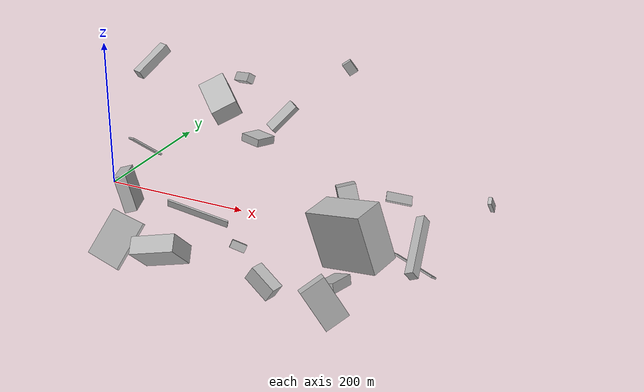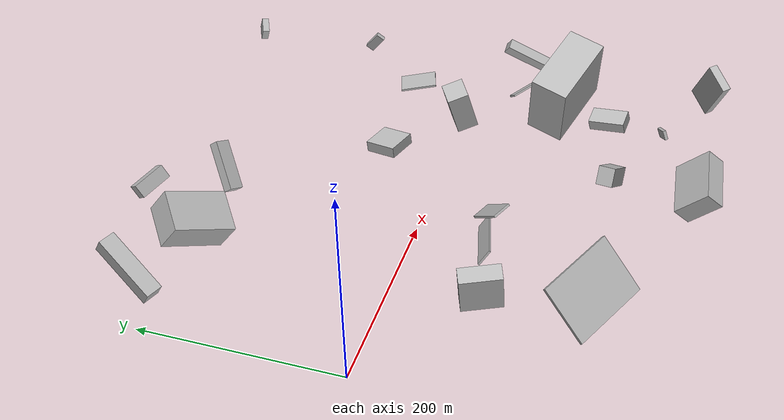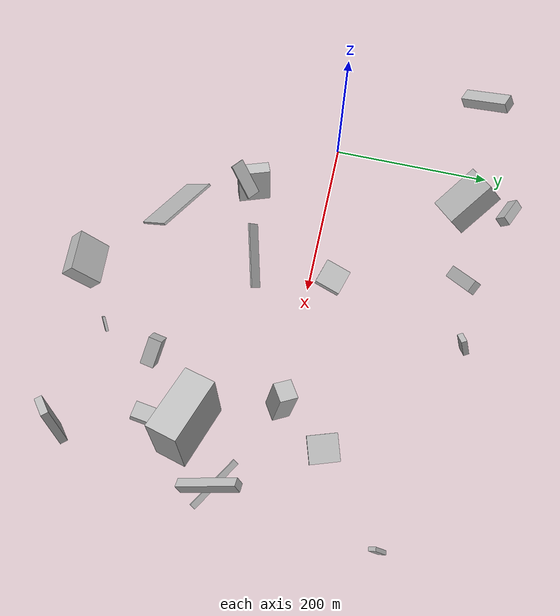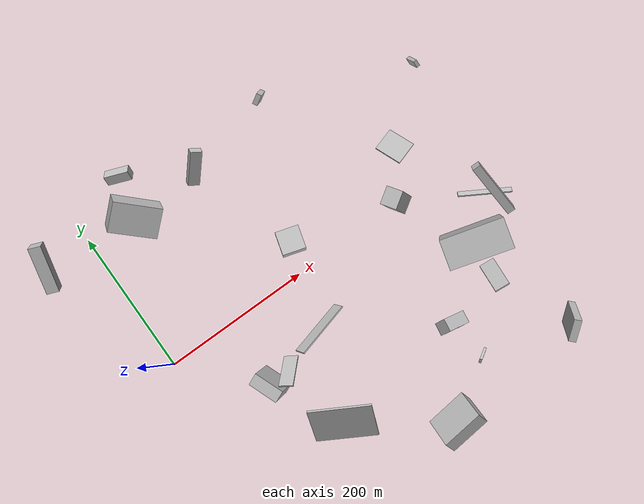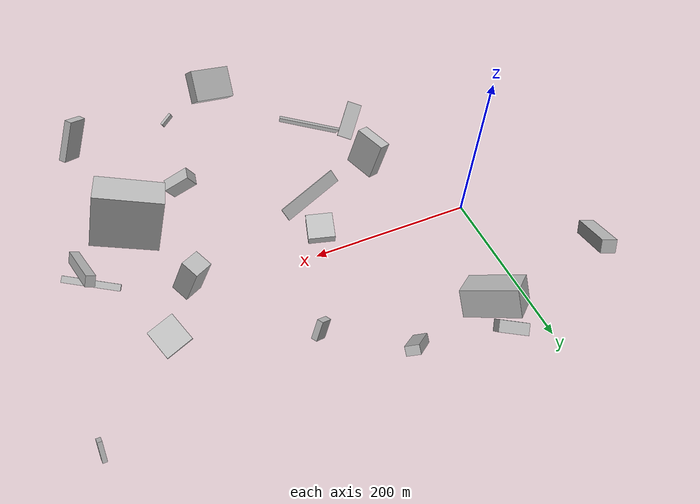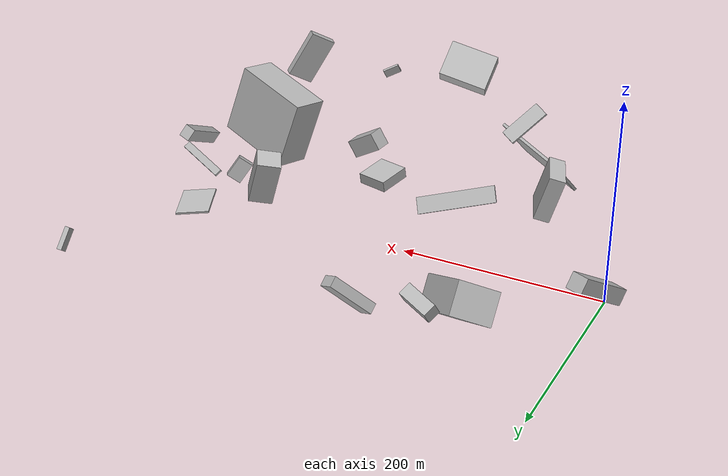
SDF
<sdf version="1.6">
 <world name="default">
  <scene>
   <sky><clouds><speed>12</speed></clouds></sky>
   <ambient>0.4 0.4 0.4 1</ambient>
   <background>0.7 0.7 0.7 1</background>
   <shadows>1</shadows>
  </scene>
  <gravity>0 0 -9.8066</gravity>
  <magnetic_field>6e-06 2.3e-05 -4.2e-05</magnetic_field>
  <physics default="0" name="default_physics" type="ode">
   <ode>
    <solver>
     <type>quick</type>
     <iters>10</iters>
     <sor>1.0</sor>
     <use_dynamic_moi_rescaling>0</use_dynamic_moi_rescaling>
    </solver>
    <constraints>
     <cfm>0</cfm>
     <erp>0.2</erp>
     <contact_max_correcting_vel>100</contact_max_correcting_vel>
     <contact_surface_layer>0.001</contact_surface_layer>
    </constraints>
   </ode>
   <max_step_size>0.004</max_step_size>
   <real_time_factor>1</real_time_factor>
   <real_time_update_rate>250</real_time_update_rate>
  </physics>
  <light name="sun" type="directional">
   <pose>0 0 10 0 0 0</pose>
   <diffuse>0.8 0.8 0.8 1</diffuse>
   <specular>0.2 0.2 0.2 1</specular>
   <attenuation>
    <range>1000</range>
    <constant>0.9</constant>
    <linear>0.01</linear>
    <quadratic>0.001</quadratic>
   </attenuation>
   <direction>-0.5 0.1 -0.9</direction>
  </light>
  <model name="building_1">
   <static>0</static>
   <pose>316.0937582929288 -211.87017826311964 84.32874828350208 -2.891015814713076 -0.4388677706784098 -2.696919925962329</pose>
   <link name="link">
    <gravity>0</gravity>
    <pose>0 0 4.5 0 0 0</pose>
    <collision name="collision"><geometry><box><size>17 3 9</size></box></geometry></collision>
    <visual name="visual">
     <cast_shadows>0</cast_shadows>
     <geometry><box><size>17 3 9</size></box></geometry>
     <material>
      <script>
       <uri>model://HANNAS_wall/materials/scripts</uri>
       <uri>model://HANNAS_wall/materials/textures</uri>
       <name>vrc/HANNAS_wall</name>
      </script>
     </material>
    </visual>
   </link>
  </model>
  <model name="building_2">
   <static>0</static>
   <pose>94.9317124932773 151.06019216824927 64.48339640127956 1.0965842462357036 0.42895206167528394 -2.486033483600368</pose>
   <link name="link">
    <gravity>0</gravity>
    <pose>0 0 30.0 0 0 0</pose>
    <collision name="collision"><geometry><box><size>39 30 60</size></box></geometry></collision>
    <visual name="visual">
     <cast_shadows>0</cast_shadows>
     <geometry><box><size>39 30 60</size></box></geometry>
     <material>
      <script>
       <uri>model://HANNAS_wall/materials/scripts</uri>
       <uri>model://HANNAS_wall/materials/textures</uri>
       <name>vrc/HANNAS_wall</name>
      </script>
     </material>
    </visual>
   </link>
  </model>
  <model name="building_3">
   <static>0</static>
   <pose>401.0914923944698 -151.41196103262078 16.995153993526863 0.22499635977322407 -0.1595141790994477 -1.6997902003308478</pose>
   <link name="link">
    <gravity>0</gravity>
    <pose>0 0 6.0 0 0 0</pose>
    <collision name="collision"><geometry><box><size>38 20 12</size></box></geometry></collision>
    <visual name="visual">
     <cast_shadows>0</cast_shadows>
     <geometry><box><size>38 20 12</size></box></geometry>
     <material>
      <script>
       <uri>model://HANNAS_wall/materials/scripts</uri>
       <uri>model://HANNAS_wall/materials/textures</uri>
       <name>vrc/HANNAS_wall</name>
      </script>
     </material>
    </visual>
   </link>
  </model>
  <model name="building_4">
   <static>0</static>
   <pose>83.39456850514594 -95.9085748549927 46.69246340647108 0.2779958833531581 -1.2869883547283891 -3.0435650922036364</pose>
   <link name="link">
    <gravity>0</gravity>
    <pose>0 0 8.0 0 0 0</pose>
    <collision name="collision"><geometry><box><size>48 39 16</size></box></geometry></collision>
    <visual name="visual">
     <cast_shadows>0</cast_shadows>
     <geometry><box><size>48 39 16</size></box></geometry>
     <material>
      <script>
       <uri>model://HANNAS_wall/materials/scripts</uri>
       <uri>model://HANNAS_wall/materials/textures</uri>
       <name>vrc/HANNAS_wall</name>
      </script>
     </material>
    </visual>
   </link>
  </model>
  <model name="building_5">
   <static>0</static>
   <pose>247.0884977567711 -264.51056245001587 73.4424131585451 0.33116146612534536 -0.776766013648153 -1.6724519477182223</pose>
   <link name="link">
    <gravity>0</gravity>
    <pose>0 0 10.0 0 0 0</pose>
    <collision name="collision"><geometry><box><size>39 52 20</size></box></geometry></collision>
    <visual name="visual">
     <cast_shadows>0</cast_shadows>
     <geometry><box><size>39 52 20</size></box></geometry>
     <material>
      <script>
       <uri>model://HANNAS_wall/materials/scripts</uri>
       <uri>model://HANNAS_wall/materials/textures</uri>
       <name>vrc/HANNAS_wall</name>
      </script>
     </material>
    </visual>
   </link>
  </model>
  <model name="building_6">
   <static>0</static>
   <pose>214.26805899773777 43.53858848783681 91.50399630129155 0.24052769120409198 -1.428577674451144 1.0403974486366159</pose>
   <link name="link">
    <gravity>0</gravity>
    <pose>0 0 15.0 0 0 0</pose>
    <collision name="collision"><geometry><box><size>10 29 30</size></box></geometry></collision>
    <visual name="visual">
     <cast_shadows>0</cast_shadows>
     <geometry><box><size>10 29 30</size></box></geometry>
     <material>
      <script>
       <uri>model://HANNAS_wall/materials/scripts</uri>
       <uri>model://HANNAS_wall/materials/textures</uri>
       <name>vrc/HANNAS_wall</name>
      </script>
     </material>
    </visual>
   </link>
  </model>
  <model name="building_7">
   <static>0</static>
   <pose>178.32971195428047 -72.62751135495793 25.7420843736564 2.197584428529295 0.28637755193387526 0.2513544994696038</pose>
   <link name="link">
    <gravity>0</gravity>
    <pose>0 0 1.0 0 0 0</pose>
    <collision name="collision"><geometry><box><size>80 17 2</size></box></geometry></collision>
    <visual name="visual">
     <cast_shadows>0</cast_shadows>
     <geometry><box><size>80 17 2</size></box></geometry>
     <material>
      <script>
       <uri>model://HANNAS_wall/materials/scripts</uri>
       <uri>model://HANNAS_wall/materials/textures</uri>
       <name>vrc/HANNAS_wall</name>
      </script>
     </material>
    </visual>
   </link>
  </model>
  <model name="building_8">
   <static>0</static>
   <pose>491.5370619185902 135.21545059807468 18.407416991819794 2.9733598260456593 -0.6569719333467913 1.740073967000932</pose>
   <link name="link">
    <gravity>0</gravity>
    <pose>0 0 11.5 0 0 0</pose>
    <collision name="collision"><geometry><box><size>10 5 23</size></box></geometry></collision>
    <visual name="visual">
     <cast_shadows>0</cast_shadows>
     <geometry><box><size>10 5 23</size></box></geometry>
     <material>
      <script>
       <uri>model://HANNAS_wall/materials/scripts</uri>
       <uri>model://HANNAS_wall/materials/textures</uri>
       <name>vrc/HANNAS_wall</name>
      </script>
     </material>
    </visual>
   </link>
  </model>
  <model name="building_9">
   <static>0</static>
   <pose>428.71142988604066 -244.72766455588948 59.91939589803739 1.4683194772805819 -0.5119842993105983 0.7995513551384197</pose>
   <link name="link">
    <gravity>0</gravity>
    <pose>0 0 4.5 0 0 0</pose>
    <collision name="collision"><geometry><box><size>29 54 9</size></box></geometry></collision>
    <visual name="visual">
     <cast_shadows>0</cast_shadows>
     <geometry><box><size>29 54 9</size></box></geometry>
     <material>
      <script>
       <uri>model://HANNAS_wall/materials/scripts</uri>
       <uri>model://HANNAS_wall/materials/textures</uri>
       <name>vrc/HANNAS_wall</name>
      </script>
     </material>
    </visual>
   </link>
  </model>
  <model name="building_10">
   <static>0</static>
   <pose>360.0039830477735 -89.83524573115157 49.27208363249852 1.3210981017594865 -0.15747027238474848 1.3112711545553248</pose>
   <link name="link">
    <gravity>0</gravity>
    <pose>0 0 40.0 0 0 0</pose>
    <collision name="collision"><geometry><box><size>39 72 80</size></box></geometry></collision>
    <visual name="visual">
     <cast_shadows>0</cast_shadows>
     <geometry><box><size>39 72 80</size></box></geometry>
     <material>
      <script>
       <uri>model://HANNAS_wall/materials/scripts</uri>
       <uri>model://HANNAS_wall/materials/textures</uri>
       <name>vrc/HANNAS_wall</name>
      </script>
     </material>
    </visual>
   </link>
  </model>
  <model name="building_11">
   <static>0</static>
   <pose>459.87549663958976 -56.065095750874384 13.234946886143092 3.1001711591916887 0.5708219789366666 1.0023608304136409</pose>
   <link name="link">
    <gravity>0</gravity>
    <pose>0 0 1.0 0 0 0</pose>
    <collision name="collision"><geometry><box><size>8 71 2</size></box></geometry></collision>
    <visual name="visual">
     <cast_shadows>0</cast_shadows>
     <geometry><box><size>8 71 2</size></box></geometry>
     <material>
      <script>
       <uri>model://HANNAS_wall/materials/scripts</uri>
       <uri>model://HANNAS_wall/materials/textures</uri>
       <name>vrc/HANNAS_wall</name>
      </script>
     </material>
    </visual>
   </link>
  </model>
  <model name="building_12">
   <static>0</static>
   <pose>-47.52189793339544 143.0417729419814 103.59213750712343 -1.0209509010146312 -0.019574431078492285 -0.3800019828967587</pose>
   <link name="link">
    <gravity>0</gravity>
    <pose>0 0 29.5 0 0 0</pose>
    <collision name="collision"><geometry><box><size>15 14 59</size></box></geometry></collision>
    <visual name="visual">
     <cast_shadows>0</cast_shadows>
     <geometry><box><size>15 14 59</size></box></geometry>
     <material>
      <script>
       <uri>model://HANNAS_wall/materials/scripts</uri>
       <uri>model://HANNAS_wall/materials/textures</uri>
       <name>vrc/HANNAS_wall</name>
      </script>
     </material>
    </visual>
   </link>
  </model>
  <model name="building_13">
   <static>0</static>
   <pose>89.94462013418388 219.23106630828062 102.05177898361295 -2.908743838869737 -0.5843643229206097 -2.124023520346474</pose>
   <link name="link">
    <gravity>0</gravity>
    <pose>0 0 6.5 0 0 0</pose>
    <collision name="collision"><geometry><box><size>12 31 13</size></box></geometry></collision>
    <visual name="visual">
     <cast_shadows>0</cast_shadows>
     <geometry><box><size>12 31 13</size></box></geometry>
     <material>
      <script>
       <uri>model://HANNAS_wall/materials/scripts</uri>
       <uri>model://HANNAS_wall/materials/textures</uri>
       <name>vrc/HANNAS_wall</name>
      </script>
     </material>
    </visual>
   </link>
  </model>
  <model name="building_14">
   <static>0</static>
   <pose>108.00583262069182 -105.06701726286042 125.77095451559202 2.252165180623193 0.2624083282717955 2.5682785415809546</pose>
   <link name="link">
    <gravity>0</gravity>
    <pose>0 0 21.0 0 0 0</pose>
    <collision name="collision"><geometry><box><size>17 2 42</size></box></geometry></collision>
    <visual name="visual">
     <cast_shadows>0</cast_shadows>
     <geometry><box><size>17 2 42</size></box></geometry>
     <material>
      <script>
       <uri>model://HANNAS_wall/materials/scripts</uri>
       <uri>model://HANNAS_wall/materials/textures</uri>
       <name>vrc/HANNAS_wall</name>
      </script>
     </material>
    </visual>
   </link>
  </model>
  <model name="building_15">
   <static>0</static>
   <pose>132.7425583608367 -185.56777063029165 33.29619397680086 2.3077327543725237 0.16624719078570943 2.635399058498786</pose>
   <link name="link">
    <gravity>0</gravity>
    <pose>0 0 1.5 0 0 0</pose>
    <collision name="collision"><geometry><box><size>80 60 3</size></box></geometry></collision>
    <visual name="visual">
     <cast_shadows>0</cast_shadows>
     <geometry><box><size>80 60 3</size></box></geometry>
     <material>
      <script>
       <uri>model://HANNAS_wall/materials/scripts</uri>
       <uri>model://HANNAS_wall/materials/textures</uri>
       <name>vrc/HANNAS_wall</name>
      </script>
     </material>
    </visual>
   </link>
  </model>
  <model name="building_16">
   <static>0</static>
   <pose>395.4003808065827 59.15769487188311 34.92906297965361 -2.9993593294072345 -0.1520839391447301 -2.831349505409769</pose>
   <link name="link">
    <gravity>0</gravity>
    <pose>0 0 1.0 0 0 0</pose>
    <collision name="collision"><geometry><box><size>33 37 2</size></box></geometry></collision>
    <visual name="visual">
     <cast_shadows>0</cast_shadows>
     <geometry><box><size>33 37 2</size></box></geometry>
     <material>
      <script>
       <uri>model://HANNAS_wall/materials/scripts</uri>
       <uri>model://HANNAS_wall/materials/textures</uri>
       <name>vrc/HANNAS_wall</name>
      </script>
     </material>
    </visual>
   </link>
  </model>
  <model name="building_17">
   <static>0</static>
   <pose>460.7628823695421 -63.112221547665506 44.37641877802042 2.660894107190683 -0.4735578435676655 1.7601944097844981</pose>
   <link name="link">
    <gravity>0</gravity>
    <pose>0 0 6.5 0 0 0</pose>
    <collision name="collision"><geometry><box><size>80 11 13</size></box></geometry></collision>
    <visual name="visual">
     <cast_shadows>0</cast_shadows>
     <geometry><box><size>80 11 13</size></box></geometry>
     <material>
      <script>
       <uri>model://HANNAS_wall/materials/scripts</uri>
       <uri>model://HANNAS_wall/materials/textures</uri>
       <name>vrc/HANNAS_wall</name>
      </script>
     </material>
    </visual>
   </link>
  </model>
  <model name="building_18">
   <static>0</static>
   <pose>357.42594378503276 -9.004629032971643 46.674971810610785 -1.8622179770764697 -0.19160913878250654 0.5723692988565018</pose>
   <link name="link">
    <gravity>0</gravity>
    <pose>0 0 11.0 0 0 0</pose>
    <collision name="collision"><geometry><box><size>24 50 22</size></box></geometry></collision>
    <visual name="visual">
     <cast_shadows>0</cast_shadows>
     <geometry><box><size>24 50 22</size></box></geometry>
     <material>
      <script>
       <uri>model://HANNAS_wall/materials/scripts</uri>
       <uri>model://HANNAS_wall/materials/textures</uri>
       <name>vrc/HANNAS_wall</name>
      </script>
     </material>
    </visual>
   </link>
  </model>
  <model name="building_19">
   <static>0</static>
   <pose>155.8931917346735 169.47095841699561 45.29495598674822 -0.7446537225991771 0.3933981808847007 -0.45478553101901215</pose>
   <link name="link">
    <gravity>0</gravity>
    <pose>0 0 24.0 0 0 0</pose>
    <collision name="collision"><geometry><box><size>15 10 48</size></box></geometry></collision>
    <visual name="visual">
     <cast_shadows>0</cast_shadows>
     <geometry><box><size>15 10 48</size></box></geometry>
     <material>
      <script>
       <uri>model://HANNAS_wall/materials/scripts</uri>
       <uri>model://HANNAS_wall/materials/textures</uri>
       <name>vrc/HANNAS_wall</name>
      </script>
     </material>
    </visual>
   </link>
  </model>
  <model name="building_20">
   <static>0</static>
   <pose>305.4636348615498 -164.36673469619578 22.915478195214344 2.128818810262106 0.07254676710111586 1.392279965854629</pose>
   <link name="link">
    <gravity>0</gravity>
    <pose>0 0 18.0 0 0 0</pose>
    <collision name="collision"><geometry><box><size>17 19 36</size></box></geometry></collision>
    <visual name="visual">
     <cast_shadows>0</cast_shadows>
     <geometry><box><size>17 19 36</size></box></geometry>
     <material>
      <script>
       <uri>model://HANNAS_wall/materials/scripts</uri>
       <uri>model://HANNAS_wall/materials/textures</uri>
       <name>vrc/HANNAS_wall</name>
      </script>
     </material>
    </visual>
   </link>
  </model>
  <model name="building_21">
   <static>0</static>
   <pose>278.2231591654479 179.7984087145305 145.70872579468391 -0.13937093875744547 0.6039996993709399 -2.719005131344483</pose>
   <link name="link">
    <gravity>0</gravity>
    <pose>0 0 9.5 0 0 0</pose>
    <collision name="collision"><geometry><box><size>13 6 19</size></box></geometry></collision>
    <visual name="visual">
     <cast_shadows>0</cast_shadows>
     <geometry><box><size>13 6 19</size></box></geometry>
     <material>
      <script>
       <uri>model://HANNAS_wall/materials/scripts</uri>
       <uri>model://HANNAS_wall/materials/textures</uri>
       <name>vrc/HANNAS_wall</name>
      </script>
     </material>
    </visual>
   </link>
  </model>
 </world>
</sdf>
